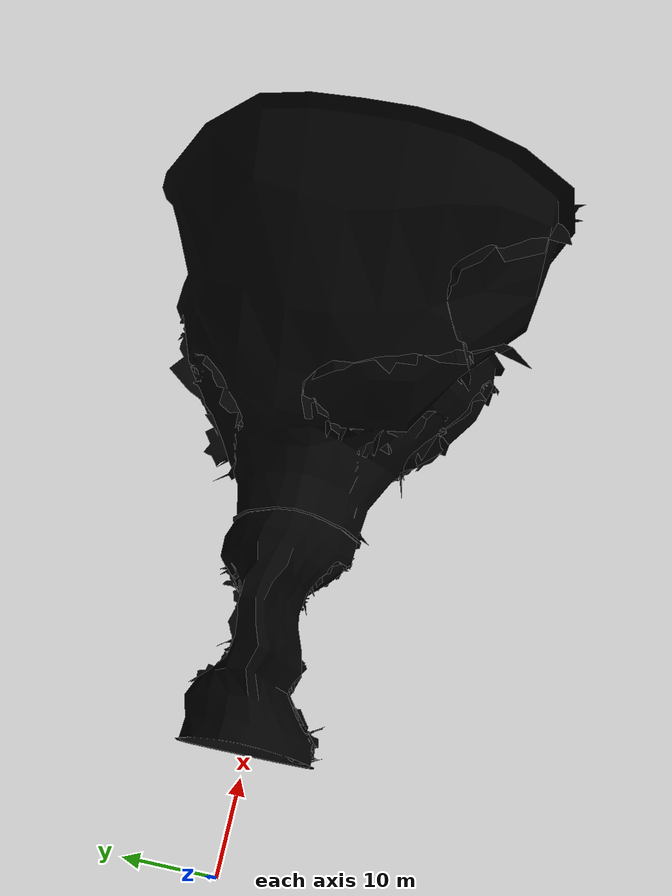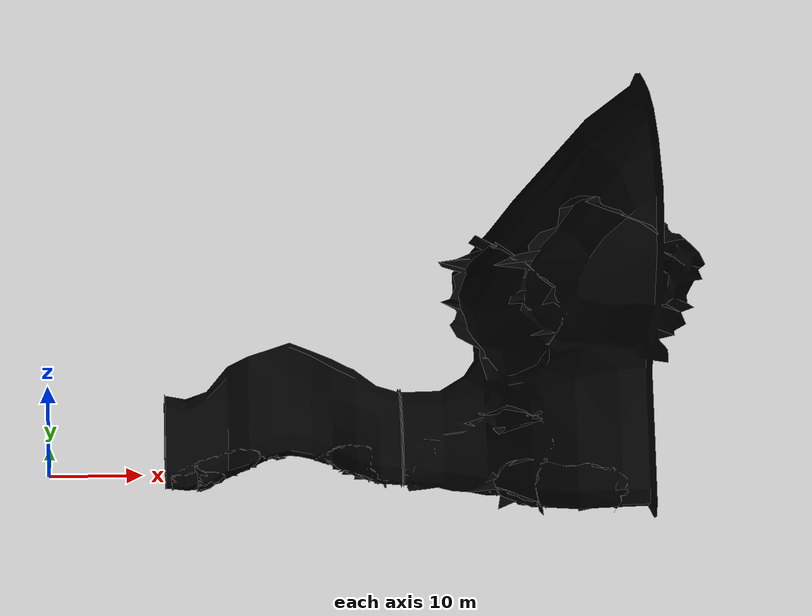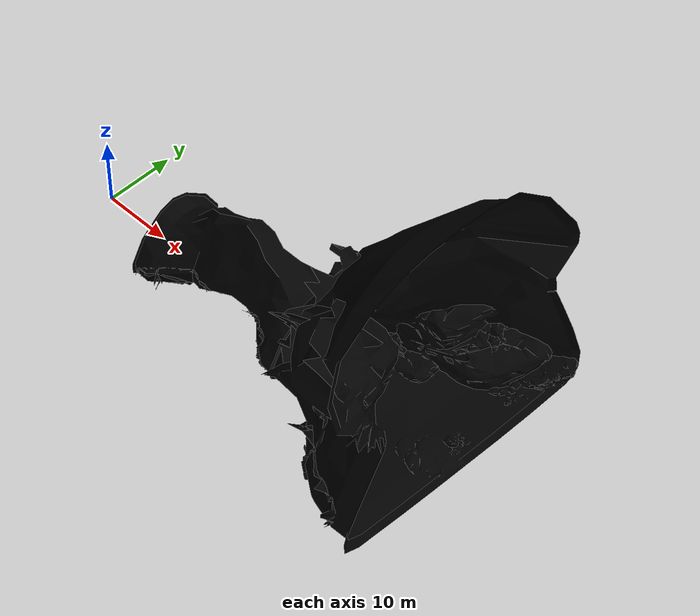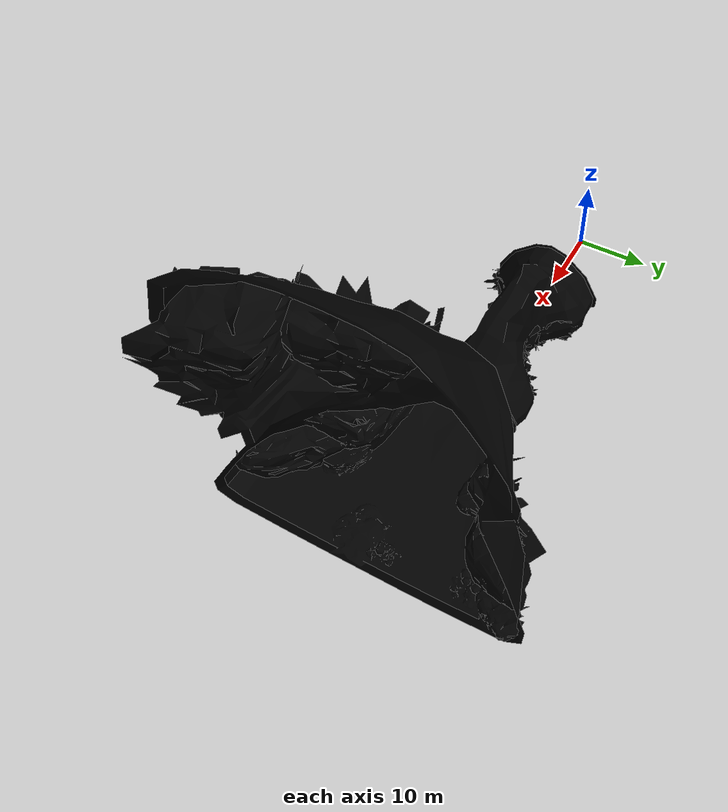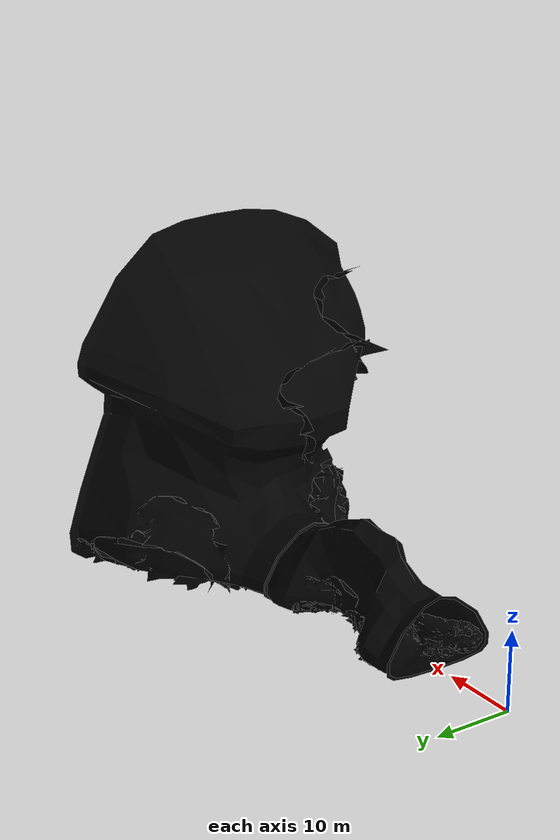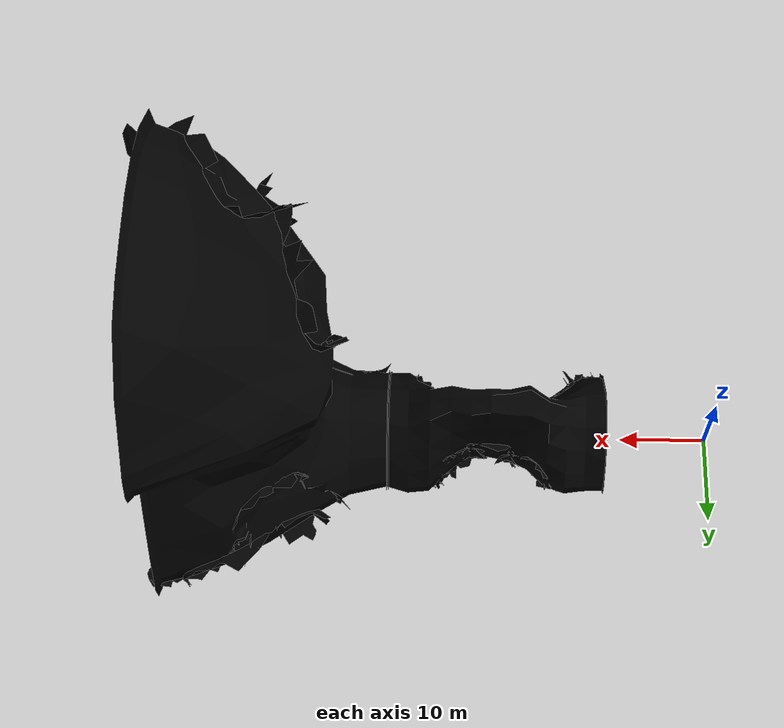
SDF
<sdf version="1.5">
 <plugin filename="ignition-gazebo-particle-emitter2-system" name="ignition::gazebo::systems::ParticleEmitter2"/>
 <plugin filename="ignition-gazebo-sensors-system" name="ignition::gazebo::systems::Sensors">
  <render_engine>ogre2</render_engine>
 </plugin>
 <world name="nix_cave">
  <plugin filename="ignition-gazebo-sensors-system" name="ignition::gazebo::systems::Sensors">
   <render_engine>ogre2</render_engine>
  </plugin>
  <physics name="4ms" type="ignored">
   <max_step_size>0.004</max_step_size>
   <real_time_factor>1.0</real_time_factor>
  </physics>
  <plugin name="ignition::gazebo::systems::Physics" filename="ignition-gazebo-physics-system"/>
  <plugin name="ignition::gazebo::systems::UserCommands" filename="ignition-gazebo-user-commands-system"/>
  <plugin name="ignition::gazebo::systems::SceneBroadcaster" filename="ignition-gazebo-scene-broadcaster-system"/>
  <include><uri>fog_generator</uri><name>fog</name><pose>2 2 -1 0 0 0</pose></include>
  <include>
   <name>tile_2</name>
   <uri>https://fuel.ignitionrobotics.org/1.0/OpenRobotics/models/Cave Straight 02 Type B</uri>
   <pose>25.000000 0.000000 0.000000 0 0 1.570796</pose>
  </include>
  <include>
   <name>tile_3</name>
   <uri>https://fuel.ignitionrobotics.org/1.0/OpenRobotics/models/Cave Cavern Split 02 Type B</uri>
   <pose>50.000000 0.000000 0.000000 0 0 0.000000</pose>
  </include>
  <light name="sun" type="directional">
   <pose>0 0 10 0 -0 0</pose>
   <diffuse>0.8 0.8 0.8 1</diffuse>
   <specular>0.2 0.2 0.2 1</specular>
   <attenuation>
    <range>1000</range>
    <constant>0.9</constant>
    <linear>0.01</linear>
    <quadratic>0.001</quadratic>
   </attenuation>
   <direction>-0.5 0.1 -0.9</direction>
  </light>
  <gravity>0 0 -9.8</gravity>
  <magnetic_field>6e-06 2.3e-05 -4.2e-05</magnetic_field>
  <atmosphere type="adiabatic"/>
  <light name="user_spot_light_0" type="spot">
   <diffuse>0.5 0.5 0.5 1</diffuse>
   <specular>0.1 0.1 0.1 1</specular>
   <direction>0 0 -1</direction>
   <attenuation>
    <range>20</range>
    <constant>0.5</constant>
    <linear>0.01</linear>
    <quadratic>0.001</quadratic>
   </attenuation>
   <cast_shadows>0</cast_shadows>
   <spot><inner_angle>0.6</inner_angle><outer_angle>1</outer_angle><falloff>1</falloff></spot>
  </light>
 </world>
</sdf>

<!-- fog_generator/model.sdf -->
<sdf version="1.6">
  <model name="fog_generator">
    <pose>0 0 0 0 -1.5707 0</pose>
    <static>true</static>
    <link name="fog_link">
      <particle_emitter name="emitter" type="box">
        <particle_scatter_ratio>0.4</particle_scatter_ratio>
        <emitting>true</emitting>
        <size>5 5 0</size>
        <particle_size>0.0001 0.0001 0.0001</particle_size>
        <lifetime>15</lifetime>
        <min_velocity>0.1</min_velocity>
        <max_velocity>0.2</max_velocity>
        <scale_rate>0.5</scale_rate>
        <rate>5</rate>
        <material>
          <diffuse>0.7 0.7 0.7</diffuse>
          <specular>1.0 1.0 1.0</specular>
          <pbr>
            <metal>
              <albedo_map>materials/textures/fog.png</albedo_map>
            </metal>
          </pbr>
        </material>
        <color_range_image>materials/textures/fogcolors.png</color_range_image>
      </particle_emitter>
    </link>
  </model>
</sdf>

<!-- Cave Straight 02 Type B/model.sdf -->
<sdf version="1.6">
  <model name="Cave Straight 02 Type B">
    <static>true</static>
    <link name="base_link">
      <collision name="collision">
        <pose>0 0 0 0 0 0</pose>
        <geometry>
          <mesh>
            <uri>model://Cave Straight 02 Type B/meshes/cavestraight02.dae</uri>
            <scale>1.005 1.005 1.0</scale>
          </mesh>
        </geometry>
      </collision>
      <visual name="StriatedRock_visual">
        <geometry>
          <mesh>
            <uri>model://Cave Straight 02 Type B/meshes/cavestraight02.dae</uri>
            <scale>1.005 1.005 1.0</scale>
            <submesh>
              <name>StriatedRock</name>
              <center>false</center>
            </submesh>
          </mesh>
        </geometry>
        <material>
          <diffuse>0 0 0 1</diffuse>
          <specular>0 0 0 1</specular>
          <pbr>
            <metal>
              <albedo_map>model://Cave Straight 02 Type B/materials/textures/StriatedRock_Albedo.png</albedo_map>
              <normal_map>model://Cave Straight 02 Type B/materials/textures/StriatedRock_Normal.png</normal_map>
              <roughness_map>model://Cave Straight 02 Type B/materials/textures/StriatedRock_Roughness.png</roughness_map>
            </metal>
          </pbr>

          <script>
            <uri>model://Cave Straight 02 Type B/materials/scripts/</uri>
            <uri>model://Cave Straight 02 Type B/materials/textures/</uri>
            <name>CaveTile/StriatedRock_Diffuse</name>
          </script>
        </material>
      </visual>
      <visual name="RockPile_visual">
        <geometry>
          <mesh>
            <uri>model://Cave Straight 02 Type B/meshes/cavestraight02.dae</uri>
            <scale>1.005 1.005 1.0</scale>
            <submesh>
              <name>RockPile</name>
              <center>false</center>
            </submesh>
          </mesh>
        </geometry>
        <material>
          <diffuse>0 0 0 1</diffuse>
          <specular>0 0 0 1</specular>
          <pbr>
            <metal>
              <albedo_map>model://Cave Straight 02 Type B/materials/textures/RockPile_Albedo.png</albedo_map>
              <normal_map>model://Cave Straight 02 Type B/materials/textures/RockPile_Normal.png</normal_map>
              <roughness_map>model://Cave Straight 02 Type B/materials/textures/RockPile_Roughness.png</roughness_map>
            </metal>
          </pbr>

          <script>
            <uri>model://Cave Straight 02 Type B/materials/scripts/</uri>
            <uri>model://Cave Straight 02 Type B/materials/textures/</uri>
            <name>CaveTile/RockPile_Diffuse</name>
          </script>
        </material>
      </visual>
      <visual name="CaveWall_visual">
        <geometry>
          <mesh>
            <uri>model://Cave Straight 02 Type B/meshes/cavestraight02.dae</uri>
            <scale>1.005 1.005 1.0</scale>
            <submesh>
              <name>CaveWall</name>
              <center>false</center>
            </submesh>
          </mesh>
        </geometry>
        <material>
          <diffuse>0 0 0 1</diffuse>
          <specular>0 0 0 1</specular>
          <pbr>
            <metal>
              <albedo_map>model://Cave Straight 02 Type B/materials/textures/CaveWall_Albedo.png</albedo_map>
              <normal_map>model://Cave Straight 02 Type B/materials/textures/CaveWall_Normal.png</normal_map>
              <roughness_map>model://Cave Straight 02 Type B/materials/textures/CaveWall_Roughness.png</roughness_map>
            </metal>
          </pbr>

          <script>
            <uri>model://Cave Straight 02 Type B/materials/scripts/</uri>
            <uri>model://Cave Straight 02 Type B/materials/textures/</uri>
            <name>CaveTile/CaveWall_Diffuse</name>
          </script>
        </material>
      </visual>
    </link>
  </model>
</sdf>

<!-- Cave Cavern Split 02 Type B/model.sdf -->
<sdf version="1.6">
  <model name="Cave Cavern Split 02 Type B">
    <static>true</static>
    <link name="base_link">
      <collision name="collision">
        <pose>0 0 0 0 0 0</pose>
        <geometry>
          <mesh>
            <uri>model://cave_Cave Cavern Split 02 Type B/meshes/cavernsplit02.dae</uri>
            <scale>1.0 1.0 1.0</scale>
          </mesh>
        </geometry>
      </collision>
      <visual name="StriatedRock_visual">
        <geometry>
          <mesh>
            <uri>model://cave_Cave Cavern Split 02 Type B/meshes/cavernsplit02.dae</uri>
            <submesh>
              <name>StriatedRock</name>
              <center>false</center>
            </submesh>
          </mesh>
        </geometry>
        <material>
          <diffuse>0 0 0 1</diffuse>
          <specular>0 0 0 1</specular>
          <pbr>
            <metal>
              <albedo_map>model://cave_Cave Cavern Split 02 Type B/materials/textures/StriatedRock_Albedo.png</albedo_map>
              <normal_map>model://cave_Cave Cavern Split 02 Type B/materials/textures/StriatedRock_Normal.png</normal_map>
              <roughness_map>model://cave_Cave Cavern Split 02 Type B/materials/textures/StriatedRock_Roughness.png</roughness_map>
            </metal>
          </pbr>

          <script>
            <uri>model://cave_Cave Cavern Split 02 Type B/materials/scripts/</uri>
            <uri>model://cave_Cave Cavern Split 02 Type B/materials/textures/</uri>
            <name>CaveTile/StriatedRock_Diffuse</name>
          </script>
        </material>
      </visual>
      <visual name="RockPile_visual">
        <geometry>
          <mesh>
            <uri>model://cave_Cave Cavern Split 02 Type B/meshes/cavernsplit02.dae</uri>
            <submesh>
              <name>RockPile</name>
              <center>false</center>
            </submesh>
          </mesh>
        </geometry>
        <material>
          <diffuse>0 0 0 1</diffuse>
          <specular>0 0 0 1</specular>
          <pbr>
            <metal>
              <albedo_map>model://cave_Cave Cavern Split 02 Type B/materials/textures/RockPile_Albedo.png</albedo_map>
              <normal_map>model://cave_Cave Cavern Split 02 Type B/materials/textures/RockPile_Normal.png</normal_map>
              <roughness_map>model://cave_Cave Cavern Split 02 Type B/materials/textures/RockPile_Roughness.png</roughness_map>
            </metal>
          </pbr>

          <script>
            <uri>model://cave_Cave Cavern Split 02 Type B/materials/scripts/</uri>
            <uri>model://cave_Cave Cavern Split 02 Type B/materials/textures/</uri>
            <name>CaveTile/RockPile_Diffuse</name>
          </script>
        </material>
      </visual>
      <visual name="CaveWall_visual">
        <geometry>
          <mesh>
            <uri>model://cave_Cave Cavern Split 02 Type B/meshes/cavernsplit02.dae</uri>
            <submesh>
              <name>CaveWall_ncl1_1</name>
              <center>false</center>
            </submesh>
          </mesh>
        </geometry>
        <material>
          <diffuse>0 0 0 1</diffuse>
          <specular>0 0 0 1</specular>
          <pbr>
            <metal>
              <albedo_map>model://cave_Cave Cavern Split 02 Type B/materials/textures/CaveWall_Albedo.png</albedo_map>
              <normal_map>model://cave_Cave Cavern Split 02 Type B/materials/textures/CaveWall_Normal.png</normal_map>
              <roughness_map>model://cave_Cave Cavern Split 02 Type B/materials/textures/CaveWall_Roughness.png</roughness_map>
            </metal>
          </pbr>

          <script>
            <uri>model://cave_Cave Cavern Split 02 Type B/materials/scripts/</uri>
            <uri>model://cave_Cave Cavern Split 02 Type B/materials/textures/</uri>
            <name>CaveTile/CaveWall_Diffuse</name>
          </script>
        </material>
      </visual>
    </link>
  </model>
</sdf>
